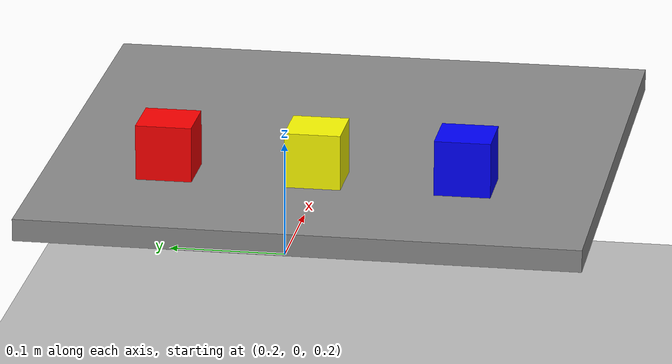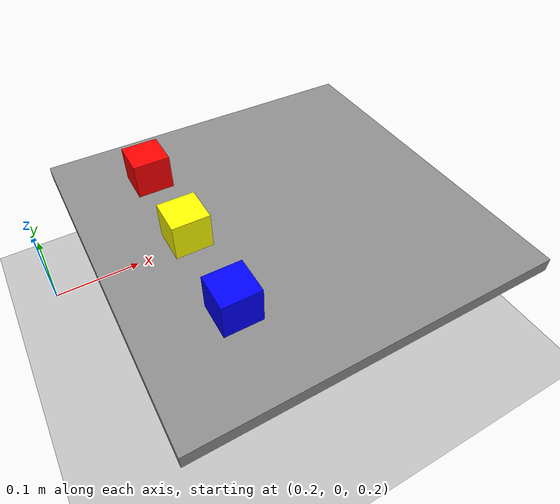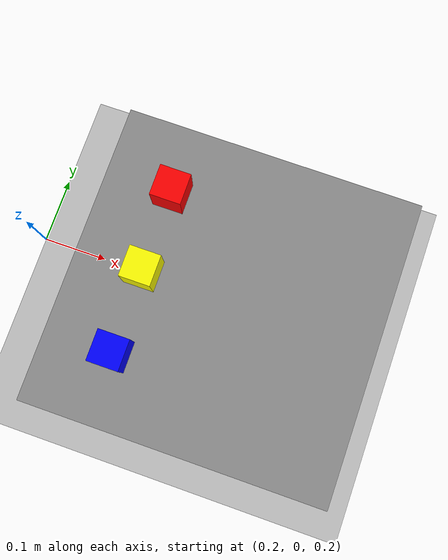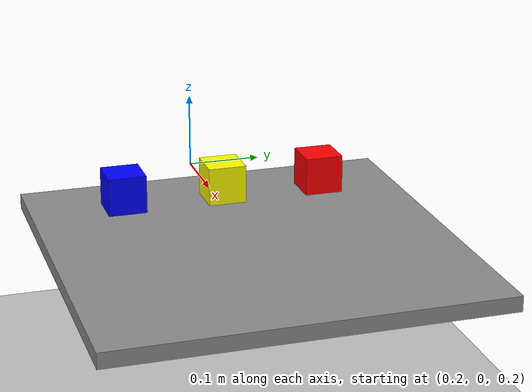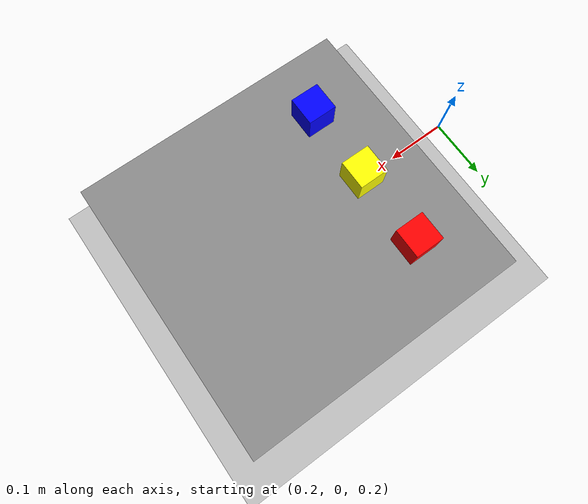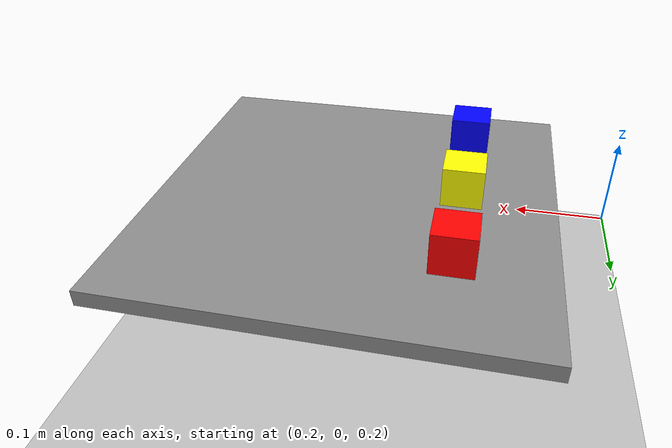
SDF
<sdf version="1.9">
  <world name="color_pick_world">
    <physics name="1ms" type="ignored">
      <max_step_size>0.001</max_step_size>
      <real_time_factor>1</real_time_factor>
      <real_time_update_rate>1000</real_time_update_rate>
    </physics>

    <plugin name="gz::sim::systems::Physics" filename="ignition-gazebo-physics-system"/>
    <plugin name="gz::sim::systems::UserCommands" filename="ignition-gazebo-user-commands-system"/>
    <plugin name="gz::sim::systems::SceneBroadcaster" filename="ignition-gazebo-scene-broadcaster-system"/>
    <plugin name="gz::sim::systems::Sensors" filename="ignition-gazebo-sensors-system">
      <render_engine>ogre2</render_engine>
    </plugin>
    <plugin name="gz::sim::systems::Contact" filename="ignition-gazebo-contact-system"/>

    <gravity>0 0 -9.8</gravity>

    <light type="directional" name="sun">
      <cast_shadows>true</cast_shadows>
      <pose>0 0 10 0 0 0</pose>
      <diffuse>0.8 0.8 0.8 1</diffuse>
      <specular>0.2 0.2 0.2 1</specular>
      <attenuation>
        <range>1000</range>
        <constant>0.9</constant>
        <linear>0.01</linear>
        <quadratic>0.001</quadratic>
      </attenuation>
      <direction>-0.5 0.1 -0.9</direction>
    </light>

    <model name="ground_plane">
      <static>true</static>
      <link name="link">
        <collision name="collision">
          <geometry>
            <plane>
              <normal>0 0 1</normal>
              <size>4 4</size>
            </plane>
          </geometry>
        </collision>
        <visual name="visual">
          <geometry>
            <plane>
              <normal>0 0 1</normal>
              <size>4 4</size>
            </plane>
          </geometry>
          <material>
            <ambient>0.75 0.75 0.75 1</ambient>
            <diffuse>0.75 0.75 0.75 1</diffuse>
          </material>
        </visual>
      </link>
    </model>

    <model name="pick_table">
      <static>true</static>
      <pose>0.50 0 0.19 0 0 0</pose>
      <link name="link">
        <collision name="collision">
          <geometry>
            <box>
              <size>0.5 0.5 0.02</size>
            </box>
          </geometry>
        </collision>
        <visual name="visual">
          <geometry>
            <box>
              <size>0.5 0.5 0.02</size>
            </box>
          </geometry>
          <material>
            <ambient>0.55 0.55 0.55 1</ambient>
            <diffuse>0.55 0.55 0.55 1</diffuse>
          </material>
        </visual>
      </link>
    </model>

    <model name="red_cube">
      <pose>0.367 0.133 0.235 0 0 0</pose>
      <link name="link">
        <inertial>
          <mass>0.05</mass>
        </inertial>
        <collision name="collision">
          <geometry>
            <box>
              <size>0.05 0.05 0.05</size>
            </box>
          </geometry>
        </collision>
        <visual name="visual">
          <geometry>
            <box>
              <size>0.05 0.05 0.05</size>
            </box>
          </geometry>
          <material>
            <ambient>1 0 0 1</ambient>
            <diffuse>1 0 0 1</diffuse>
          </material>
        </visual>
      </link>
    </model>

    <model name="yellow_cube">
      <pose>0.367 0.000 0.235 0 0 0</pose>
      <link name="link">
        <inertial>
          <mass>0.05</mass>
        </inertial>
        <collision name="collision">
          <geometry>
            <box>
              <size>0.05 0.05 0.05</size>
            </box>
          </geometry>
        </collision>
        <visual name="visual">
          <geometry>
            <box>
              <size>0.05 0.05 0.05</size>
            </box>
          </geometry>
          <material>
            <ambient>1 1 0 1</ambient>
            <diffuse>1 1 0 1</diffuse>
          </material>
        </visual>
      </link>
    </model>

    <model name="blue_cube">
      <pose>0.367 -0.133 0.235 0 0 0</pose>
      <link name="link">
        <inertial>
          <mass>0.05</mass>
        </inertial>
        <collision name="collision">
          <geometry>
            <box>
              <size>0.05 0.05 0.05</size>
            </box>
          </geometry>
        </collision>
        <visual name="visual">
          <geometry>
            <box>
              <size>0.05 0.05 0.05</size>
            </box>
          </geometry>
          <material>
            <ambient>0 0 1 1</ambient>
            <diffuse>0 0 1 1</diffuse>
          </material>
        </visual>
      </link>
    </model>

    <scene>
      <shadows>false</shadows>
    </scene>
  </world>
</sdf>
